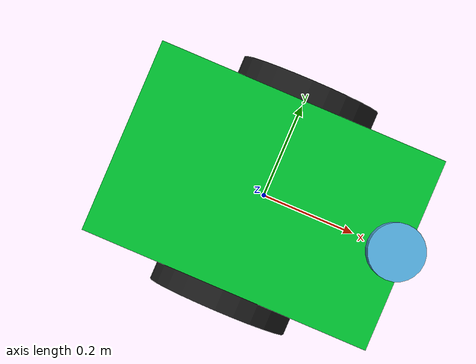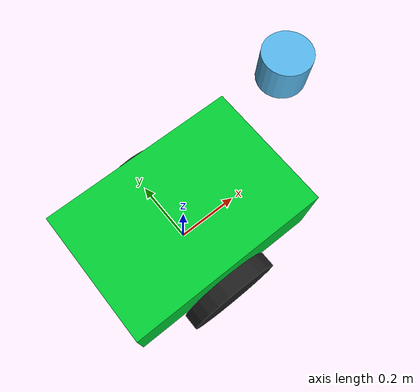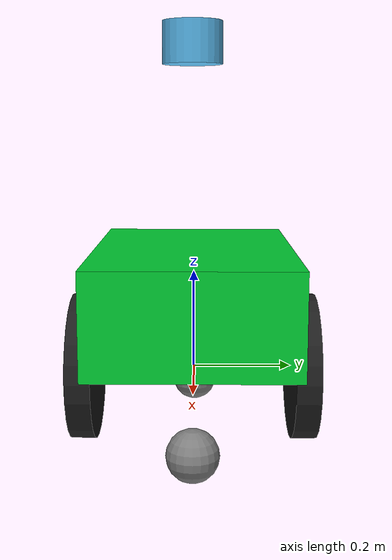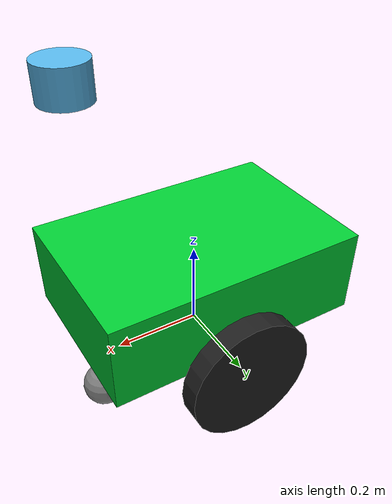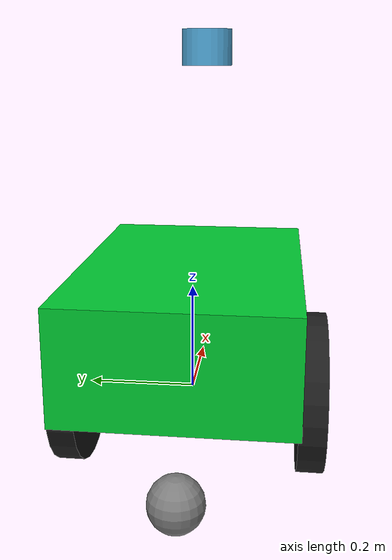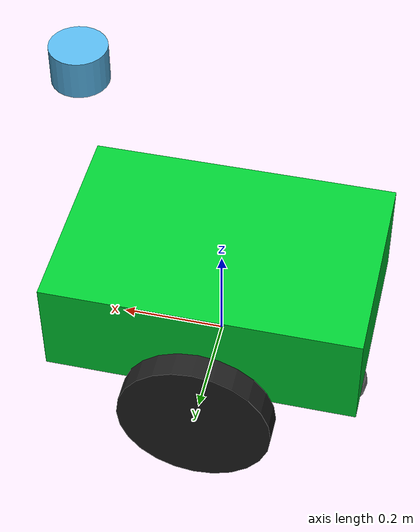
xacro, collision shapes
<?xml version="1.0"?>
<robot name="wheelchair_bot" xmlns:xacro="http://www.ros.org/xacro">

  <xacro:include filename="$(find velodyne_description)/urdf/VLP-16.urdf.xacro"/>

  <xacro:property name="PI" value="3.1415926535897931"/>

  <xacro:property name="chassis_length" value="0.6" />
  <xacro:property name="chassis_width" value="0.4" />
  <xacro:property name="chassis_height" value="0.2" />
  <xacro:property name="chassis_mass" value="10" />

  <xacro:property name="wheel_radius" value="0.15" />
  <xacro:property name="wheel_width" value="0.05" />
  <xacro:property name="wheel_mass" value="1" />

  <xacro:property name="caster_radius" value="0.05" />
  <xacro:property name="caster_mass" value="0.1" />

  <xacro:property name="lidar_size" value="0.05" />
  <xacro:property name="lidar_mass" value="0.1" />

  <!--  DRIVE WHEEL MACRO   -->
  <xacro:macro name="drive_wheel" params="prefix side_y">
    <link name="${prefix}_wheel_link">
      <visual>
        <origin xyz="0 0 0" rpy="${PI/2} 0 0"/>
        <geometry>
          <cylinder radius="${wheel_radius}" length="${wheel_width}"/>
        </geometry>
        <material name="Black"/>
      </visual>
      <collision>
        <origin xyz="0 0 0" rpy="${PI/2} 0 0"/>
        <geometry>
          <cylinder radius="${wheel_radius}" length="${wheel_width}"/>
        </geometry>
      </collision>
      <inertial>
        <mass value="${wheel_mass}"/>
        <origin rpy="${PI/2} 0 0" xyz="0 0 0"/>
        <inertia ixx="0.001" ixy="0.0" ixz="0.0" iyy="0.001" iyz="0.0" izz="0.001"/>
      </inertial>
    </link>

    <joint name="${prefix}_wheel_joint" type="continuous">
      <parent link="base_link"/>
      <child link="${prefix}_wheel_link"/>
      <origin xyz="0 ${side_y * (chassis_width/2 + wheel_width/2)} 0" rpy="0 0 0"/>
      <axis xyz="0 1 0"/>
    </joint>

    <gazebo reference="${prefix}_wheel_link">
      <mu1>1.0</mu1>
      <mu2>1.0</mu2>
      <kp>1000000.0</kp>
      <kd>100.0</kd>
      <material>Gazebo/Black</material>
    </gazebo>
  </xacro:macro>

  <!--  CASTER WHEEL MACRO  -->
  <xacro:macro name="caster_wheel" params="prefix x_pos">
    <link name="${prefix}_caster_link">
      <visual>
        <geometry>
          <sphere radius="${caster_radius}"/>
        </geometry>
        <material name="Grey"><color rgba="0.5 0.5 0.5 1.0"/></material>
      </visual>
      <collision>
        <geometry>
          <sphere radius="${caster_radius}"/>
        </geometry>
      </collision>
      <inertial>
        <mass value="${caster_mass}"/>
        <inertia ixx="0.001" ixy="0" ixz="0" iyy="0.001" iyz="0" izz="0.001"/>
      </inertial>
    </link>

    <joint name="${prefix}_caster_joint" type="fixed">
      <parent link="base_link"/>
      <child link="${prefix}_caster_link"/>
      <origin xyz="${x_pos} 0 ${caster_radius - wheel_radius}" rpy="0 0 0"/>
    </joint>

    <gazebo reference="${prefix}_caster_link">
      <material>Gazebo/Grey</material>
      <mu1>0.01</mu1>
      <mu2>0.01</mu2>
      <kp>1000000.0</kp>
      <kd>100.0</kd>
    </gazebo>
  </xacro:macro>

  <!--       BASE LINK       -->
  <link name="base_link">
    <visual>
      <geometry><box size="${chassis_length} ${chassis_width} ${chassis_height}"/></geometry>
      <origin xyz="0 0 ${wheel_radius}" rpy="0 0 0"/>
      <material name="green"><color rgba="0.0 0.8 0.2 1.0"/></material>
    </visual>
    <collision>
      <geometry><box size="${chassis_length} ${chassis_width} ${chassis_height}"/></geometry>
      <origin xyz="0 0 ${wheel_radius}" rpy="0 0 0"/>
    </collision>
    <inertial>
      <mass value="${chassis_mass}"/>
      <origin xyz="0 0 ${wheel_radius}" rpy="0 0 0"/>
      <inertia ixx="1.0" ixy="0.0" ixz="0.0" iyy="1.0" iyz="0.0" izz="1.0"/>
    </inertial>
  </link>

  <!--   FIXED LIDAR HEIGHT  -->
  <xacro:VLP-16 parent="base_link" name="velodyne" topic="/velodyne_points" hz="10" samples="440" min_range="0.1">
    <!-- LIDAR NOW RAISED ABOVE THE ROBOT BODY -->
    <origin xyz="${chassis_length/2 - 0.05} 0 ${wheel_radius + chassis_height + 0.25}" rpy="0 0 0" />
  </xacro:VLP-16>

  <!--   WHEELS & CASTERS   -->
  <xacro:drive_wheel prefix="left" side_y="1" />
  <xacro:drive_wheel prefix="right" side_y="-1" />
  <xacro:caster_wheel prefix="front" x_pos="${chassis_length/2 - caster_radius}" />
  <xacro:caster_wheel prefix="rear" x_pos="${-chassis_length/2 + caster_radius}" />

  <!--    DRIVE PLUGIN       -->
  <gazebo>
    <plugin name="differential_drive_controller" filename="libgazebo_ros_diff_drive.so">
      <alwaysOn>true</alwaysOn>
      <updateRate>100</updateRate>

      <leftJoint>left_wheel_joint</leftJoint>
      <rightJoint>right_wheel_joint</rightJoint>
      <wheelSeparation>${chassis_width + wheel_width}</wheelSeparation>
      <wheelDiameter>${wheel_radius * 2}</wheelDiameter>
      <wheelTorque>20</wheelTorque>
      <wheelAcceleration>1.8</wheelAcceleration>

      <commandTopic>cmd_vel</commandTopic>
      <odometryTopic>odom</odometryTopic>

      <odometryFrame>odom</odometryFrame>
      <robotBaseFrame>base_link</robotBaseFrame>

      <publishWheelTF>false</publishWheelTF>
      <publishOdomTF>true</publishOdomTF>
      <publishWheelJointState>true</publishWheelJointState>

      <legacyMode>false</legacyMode>
    </plugin>
  </gazebo>

</robot>

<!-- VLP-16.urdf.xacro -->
<robot xmlns:xacro="http://www.ros.org/wiki/xacro" name="VLP-16">
  <xacro:property name="M_PI" value="3.1415926535897931" />
  <xacro:macro name="VLP-16" params="*origin is_sim:=true parent:=base_link name:=velodyne tf_prefix:='' topic:=/velodyne_points organize_cloud:=false hz:=10 lasers:=16 samples:=1875 collision_range:=0.3 min_range:=0.0 max_range:=100.0 noise:=0.008 min_angle:=-${M_PI} max_angle:=${M_PI} gpu:=false">

    <joint name="${name}_base_mount_joint" type="fixed">
      <xacro:insert_block name="origin" />
      <parent link="${parent}"/>
      <child link="${name}_base_link"/>
    </joint>

    <link name="${name}_base_link">
      <inertial>
        <mass value="0.83"/>
        <origin xyz="0 0 0.03585"/>
        <inertia ixx="${(0.83 * (3.0*0.0516*0.0516 + 0.0717*0.0717)) / 12.0}" ixy="0" ixz="0"
          iyy="${(0.83 * (3.0*0.0516*0.0516 + 0.0717*0.0717)) / 12.0}" iyz="0"
          izz="${0.5 * 0.83 * (0.0516*0.0516)}"/>
      </inertial>
      <visual>
        <geometry>
          <mesh filename="package://velodyne_description/meshes/VLP16_base_1.dae" />
        </geometry>
      </visual>
      <visual>
        <geometry>
          <mesh filename="package://velodyne_description/meshes/VLP16_base_2.dae" />
        </geometry>
      </visual>
      <collision>
        <origin rpy="0 0 0" xyz="0 0 0.03585"/>
        <geometry>
          <cylinder radius="0.0516" length="0.0717"/>
        </geometry>
      </collision>
    </link>

    <joint name="${name}_base_scan_joint" type="fixed" >
      <origin xyz="0 0 0.0377" rpy="0 0 0" />
      <parent link="${name}_base_link" />
      <child link="${name}"/>
    </joint>

    <link name="${name}">
      <inertial>
        <mass value="0.01"/>
        <origin xyz="0 0 0"/>
        <inertia ixx="1e-7" ixy="0" ixz="0" iyy="1e-7" iyz="0" izz="1e-7"/>
      </inertial>
      <visual>
        <origin xyz="0 0 -0.0377" />
        <geometry>
          <mesh filename="package://velodyne_description/meshes/VLP16_scan.dae" />
        </geometry>
      </visual>
      <collision>
        <geometry>
          <sphere radius="0"/>
        </geometry>
      </collision>
    </link>

    <!-- Gazebo requires the velodyne_gazebo_plugins package -->
    <xacro:if value="${is_sim}">
        <gazebo reference="${name}">
            <xacro:if value="${gpu}">
                <sensor type="gpu_ray" name="${name}-VLP16">
                <pose>0 0 0 0 0 0</pose>
                <visualize>false</visualize>
                <update_rate>${hz}</update_rate>
                <ray>
                    <scan>
                    <horizontal>
                        <samples>${samples}</samples>
                        <resolution>1</resolution>
                        <min_angle>${min_angle}</min_angle>
                        <max_angle>${max_angle}</max_angle>
                    </horizontal>
                    <vertical>
                        <samples>${lasers}</samples>
                        <resolution>1</resolution>
                        <min_angle>-${15.0*M_PI/180.0}</min_angle>
                        <max_angle> ${15.0*M_PI/180.0}</max_angle>
                    </vertical>
                    </scan>
                    <range>
                    <min>${collision_range}</min>
                    <max>${max_range+1}</max>
                    <resolution>0.001</resolution>
                    </range>
                    <noise>
                    <type>gaussian</type>
                    <mean>0.0</mean>
                    <stddev>0.0</stddev>
                    </noise>
                </ray>
                <plugin name="gazebo_ros_laser_controller" filename="libgazebo_ros_velodyne_laser.so">
                    <ros>
                    <namespace>/${name}</namespace>
                    <remapping>~/out:=${topic}</remapping>
                    </ros>
                    <tf_prefix>${tf_prefix}</tf_prefix>
                    <frame_name>${name}</frame_name>
                    <organize_cloud>${organize_cloud}</organize_cloud>
                    <min_range>${min_range}</min_range>
                    <max_range>${max_range}</max_range>
                    <gaussian_noise>${noise}</gaussian_noise>
                </plugin>
                </sensor>
            </xacro:if>
            <xacro:unless value="${gpu}">
                <sensor type="ray" name="${name}-VLP16">
                <pose>0 0 0 0 0 0</pose>
                <visualize>false</visualize>
                <update_rate>${hz}</update_rate>
                <ray>
                    <scan>
                    <horizontal>
                        <samples>${samples}</samples>
                        <resolution>1</resolution>
                        <min_angle>${min_angle}</min_angle>
                        <max_angle>${max_angle}</max_angle>
                    </horizontal>
                    <vertical>
                        <samples>${lasers}</samples>
                        <resolution>1</resolution>
                        <min_angle>-${15.0*M_PI/180.0}</min_angle>
                        <max_angle> ${15.0*M_PI/180.0}</max_angle>
                    </vertical>
                    </scan>
                    <range>
                    <min>${collision_range}</min>
                    <max>${max_range+1}</max>
                    <resolution>0.001</resolution>
                    </range>
                    <noise>
                    <type>gaussian</type>
                    <mean>0.0</mean>
                    <stddev>0.0</stddev>
                    </noise>
                </ray>
                <plugin name="gazebo_ros_laser_controller" filename="libgazebo_ros_velodyne_laser.so">
                    <ros>
                    <namespace>/${name}</namespace>
                    <remapping>~/out:=${topic}</remapping>
                    </ros>
                    <tf_prefix>${tf_prefix}</tf_prefix>
                    <frame_name>${name}</frame_name>
                    <organize_cloud>${organize_cloud}</organize_cloud>
                    <min_range>${min_range}</min_range>
                    <max_range>${max_range}</max_range>
                    <gaussian_noise>${noise}</gaussian_noise>
                </plugin>
                </sensor>
            </xacro:unless>
        </gazebo>
    </xacro:if>

  </xacro:macro>
</robot>
